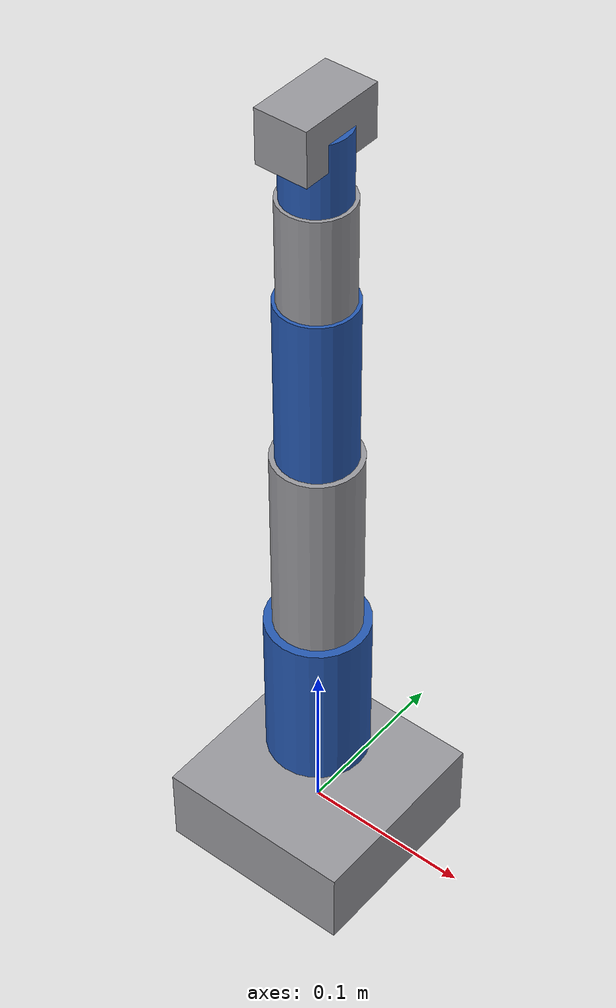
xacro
<?xml version="1.0"?>
<robot xmlns:xacro="http://www.ros.org/wiki/xacro" name="rob3">

  <xacro:property name="deg" value="0.017453292519943295"/>

  <material name="rob3_grey"><color rgba="0.6 0.6 0.62 1"/></material>
  <material name="rob3_blue"><color rgba="0.15 0.35 0.7 1"/></material>

  <xacro:macro name="cyl_link" params="name len radius material">
    <link name="${name}">
      <visual>
        <origin xyz="0 0 ${len/2}" rpy="0 0 0"/>
        <geometry><cylinder length="${len}" radius="${radius}"/></geometry>
        <material name="${material}"/>
      </visual>
      <collision>
        <origin xyz="0 0 ${len/2}" rpy="0 0 0"/>
        <geometry><cylinder length="${len}" radius="${radius}"/></geometry>
      </collision>
      <inertial>
        <mass value="0.2"/>
        <inertia ixx="1e-3" ixy="0" ixz="0" iyy="1e-3" iyz="0" izz="1e-3"/>
      </inertial>
    </link>
  </xacro:macro>

  <link name="base_link">
    <visual>
      <geometry><box size="0.12 0.12 0.05"/></geometry>
      <material name="rob3_grey"/>
    </visual>
  </link>

  <xacro:cyl_link name="link1" len="0.10" radius="0.03" material="rob3_blue"/>
  <xacro:cyl_link name="link2" len="0.12" radius="0.025" material="rob3_grey"/>
  <xacro:cyl_link name="link3" len="0.10" radius="0.022" material="rob3_blue"/>
  <xacro:cyl_link name="link4" len="0.06" radius="0.02"  material="rob3_grey"/>
  <xacro:cyl_link name="link5" len="0.04" radius="0.018" material="rob3_blue"/>
  <link name="gripper_link">
    <visual><geometry><box size="0.03 0.05 0.03"/></geometry><material name="rob3_grey"/></visual>
  </link>

  <!-- axis 0: base rotation (q1) +80..-80 deg -->
  <joint name="base" type="revolute">
    <parent link="base_link"/><child link="link1"/>
    <origin xyz="0 0 0.05" rpy="0 0 0"/><axis xyz="0 0 1"/>
    <limit lower="${-80*deg}" upper="${80*deg}" effort="10" velocity="1.0"/>
  </joint>

  <!-- axis 1: shoulder (q2) +70..-30 deg -->
  <joint name="shoulder" type="revolute">
    <parent link="link1"/><child link="link2"/>
    <origin xyz="0 0 0.10" rpy="0 0 0"/><axis xyz="0 1 0"/>
    <limit lower="${-30*deg}" upper="${70*deg}" effort="10" velocity="1.0"/>
  </joint>

  <!-- axis 2: elbow (q3) 0..-100 deg -->
  <joint name="elbow" type="revolute">
    <parent link="link2"/><child link="link3"/>
    <origin xyz="0 0 0.12" rpy="0 0 0"/><axis xyz="0 1 0"/>
    <limit lower="${-100*deg}" upper="0" effort="8" velocity="1.0"/>
  </joint>

  <!-- axis 3: wrist pitch (q4) +/-100 deg -->
  <joint name="wrist_pitch" type="revolute">
    <parent link="link3"/><child link="link4"/>
    <origin xyz="0 0 0.10" rpy="0 0 0"/><axis xyz="0 1 0"/>
    <limit lower="${-100*deg}" upper="${100*deg}" effort="5" velocity="1.5"/>
  </joint>

  <!-- axis 4: wrist roll (q5) +/-100 deg -->
  <joint name="wrist_roll" type="revolute">
    <parent link="link4"/><child link="link5"/>
    <origin xyz="0 0 0.06" rpy="0 0 0"/><axis xyz="0 0 1"/>
    <limit lower="${-100*deg}" upper="${100*deg}" effort="5" velocity="1.5"/>
  </joint>

  <!-- axis 5: gripper 0..60 mm (prismatic) -->
  <joint name="gripper" type="prismatic">
    <parent link="link5"/><child link="gripper_link"/>
    <origin xyz="0 0 0.04" rpy="0 0 0"/><axis xyz="1 0 0"/>
    <limit lower="0.0" upper="0.060" effort="20" velocity="0.05"/>
  </joint>

</robot>
